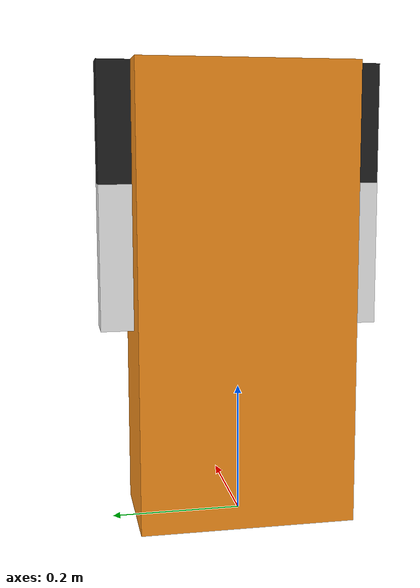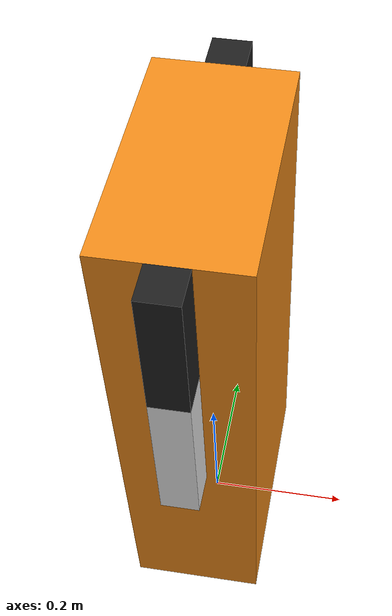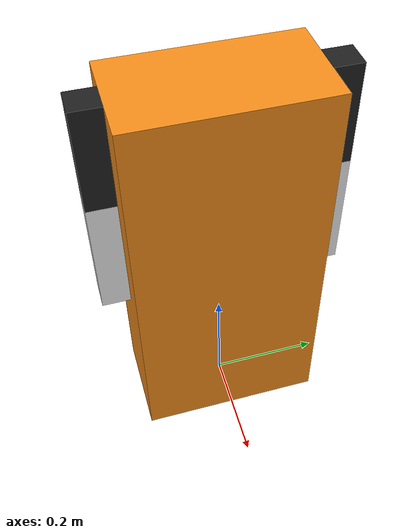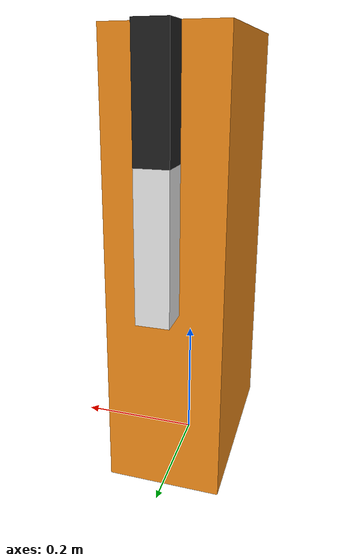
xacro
<?xml version="1.0"?>
<!-- Revolute-Revolute Manipulator -->
<robot name="arm" xmlns:xacro="http://www.ros.org/wiki/xacro">

  <!-- Constants for robot dimensions -->
  <xacro:property name="PI" value="3.1415926535897931"/>
  <xacro:property name="body_width_1" value=".18" />
  <xacro:property name="body_width_2" value=".33" />

  <xacro:property name="link_width" value="0.05" /> <!-- Square dimensions (widthxwidth) of beams -->
  <xacro:property name="l_link_length_1" value=".18" /> <!-- Link 1 -->
  <xacro:property name="l_link_length_2" value=".22" /> <!-- Link 1 -->

  <xacro:property name="r_link_length_2" value=".18" /> <!-- Link 1 -->
  <xacro:property name="r_link_length_4" value=".22" /> <!-- Link 1 -->

  <xacro:property name="body_height" value="0.7" />
  <xacro:property name="height1" value="2" /> <!-- Link 1 -->
  <xacro:property name="height2" value="1" /> <!-- Link 2 -->
  <xacro:property name="height3" value="1" /> <!-- Link 3 -->
  <xacro:property name="camera_link" value="0.05" /> <!-- Size of square 'camera' box -->
  <xacro:property name="axel_offset" value="0" /> <!-- Space btw top of beam and the each joint -->

  <!-- Import all Gazebo-customization elements, including Gazebo colors -->
  <xacro:include filename="$(find arm_description)/urdf/arm.gazebo" />
  <!-- Import Rviz colors -->
  <xacro:include filename="$(find arm_description)/urdf/materials.xacro" />

  <!-- Used for fixing robot to Gazebo 'base_link' -->
  <link name="world"/>

  <joint name="fixed" type="fixed">
    <parent link="world"/>
    <child link="base_link"/>
  </joint>

  <!-- Base Link -->
  <link name="base_link">
    <collision>
      <origin xyz="0 0 ${body_height/2}" rpy="0 0 0"/>
      <geometry>
	<box size="${body_width_1} ${body_width_2} ${body_height}"/>
      </geometry>
    </collision>

    <visual>
      <origin xyz="0 0 ${body_height/2}" rpy="0 0 0"/>
      <geometry>
	<box size="${body_width_1} ${body_width_2} ${body_height}"/>
      </geometry>
      <material name="orange"/>
    </visual>

  </link>

  <joint name="r_joint1" type="continuous">
    <parent link="base_link"/>
    <child link="r_s_link_1"/>
    <origin xyz="0 ${.38/2} ${body_height}" rpy="0 ${PI} 0"/>
    <axis xyz="0 1 0"/>
  </joint>

  <link name="r_s_link_1">
    <collision>
      <origin xyz="0 0 0" rpy="0 0 0"/>
      <geometry>
	<box size="0 0 0"/>
      </geometry>
    </collision>

    <visual>
      <origin xyz="0 0 0" rpy="0 0 0"/>
      <geometry>
	<box size="0 0 0"/>
      </geometry>
      <material name="black"/>
    </visual>

  </link>

  <joint name="r_joint2" type="continuous">
    <parent link="r_s_link_1"/>
    <child link="r_s_link_2"/>
    <origin xyz="0 0 0" rpy="0 0 0"/>
    <axis xyz="1 0 0"/>
  </joint>

  <link name="r_s_link_2">
    <collision>
      <origin xyz="0 0 ${r_link_length_2/2}" rpy="0 0 0"/>
      <geometry>
	<box size="${link_width} ${link_width} ${r_link_length_2}"/>
      </geometry>
    </collision>

    <visual>
      <origin xyz="0 0 ${r_link_length_2/2}" rpy="0 0 0"/>
      <geometry>
	<box size="${link_width} ${link_width} ${r_link_length_2}"/>
      </geometry>
      <material name="black"/>
    </visual>

  </link>

  <joint name="r_joint3" type="continuous">
    <parent link="r_s_link_2"/>
    <child link="r_s_link_3"/>
    <origin xyz="0 0 ${r_link_length_2}" rpy="0 0 0"/>
    <axis xyz="0 0 1"/>
  </joint>

  <link name="r_s_link_3">
    <collision>
      <origin xyz="0 0 0" rpy="0 0 0"/>
      <geometry>
	<box size="0 0 0"/>
      </geometry>
    </collision>

    <visual>
      <origin xyz="0 0 0" rpy="0 0 0"/>
      <geometry>
	<box size="0 0 0"/>
      </geometry>
      <material name="white"/>
    </visual>

  </link>

  <joint name="r_joint4" type="continuous">
    <parent link="r_s_link_3"/>
    <child link="r_s_link_4"/>
    <origin xyz="0 0 0" rpy="0 0 0"/>
    <axis xyz="0 1 0"/>
  </joint>

  <link name="r_s_link_4">
    <collision>
      <origin xyz="0 0 ${r_link_length_4/2}" rpy="0 0 0"/>
      <geometry>
	<box size="${link_width} ${link_width} ${r_link_length_4}"/>
      </geometry>
    </collision>

    <visual>
      <origin xyz="0 0 ${r_link_length_4/2}" rpy="0 0 0"/>
      <geometry>
	<box size="${link_width} ${link_width} ${r_link_length_4}"/>
      </geometry>
      <material name="white"/>
    </visual>

  </link>

<!-- Left Arm-->
  <joint name="l_joint1" type="continuous">
    <parent link="base_link"/>
    <child link="l_s_link_1"/>
    <origin xyz="0 -0.19 ${body_height}" rpy="0 ${PI} 0"/>
    <axis xyz="0 1 0"/>
  </joint>

  <link name="l_s_link_1">
    <collision>
      <origin xyz="0 0 ${l_link_length_1/2}" rpy="0 0 0"/>
      <geometry>
	<box size="${link_width} ${link_width} ${l_link_length_1}"/>
      </geometry>
    </collision>

    <visual>
      <origin xyz="0 0 ${l_link_length_1/2}" rpy="0 0 0"/>
      <geometry>
	<box size="${link_width} ${link_width} ${l_link_length_1}"/>
      </geometry>
      <material name="black"/>
    </visual>

  </link>

  <joint name="l_joint2" type="continuous">
    <parent link="l_s_link_1"/>
    <child link="l_s_link_2"/>
    <origin xyz="0 0 ${l_link_length_1}" rpy="0 0 0"/>
    <axis xyz="0 1 0"/>
  </joint>

  <link name="l_s_link_2">
    <collision>
      <origin xyz="0 0 ${l_link_length_2/2}" rpy="0 0 0"/>
      <geometry>
	<box size="${link_width} ${link_width} ${l_link_length_2}"/>
      </geometry>
    </collision>

    <visual>
      <origin xyz="0 0 ${l_link_length_2/2}" rpy="0 0 0"/>
      <geometry>
	<box size="${link_width} ${link_width} ${l_link_length_2}"/>
      </geometry>
      <material name="white"/>
    </visual>

  </link>

</robot>
